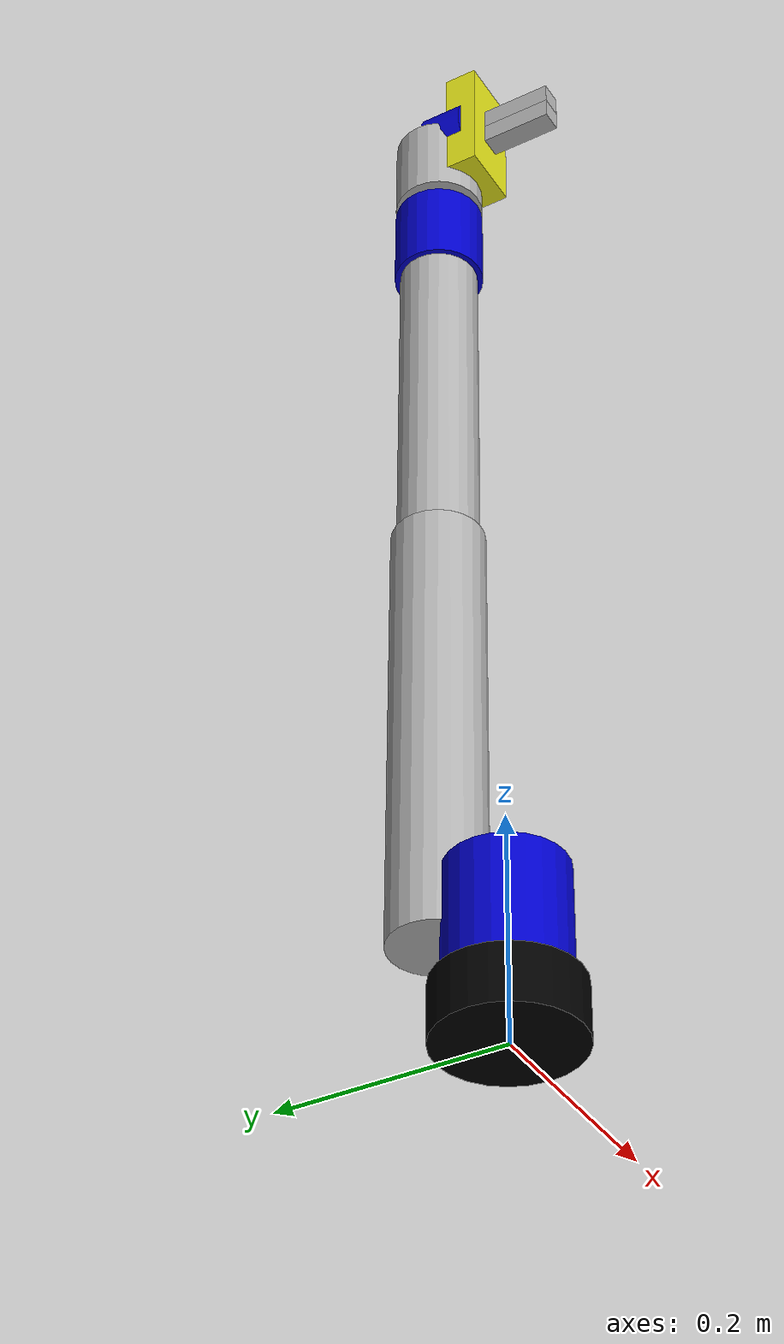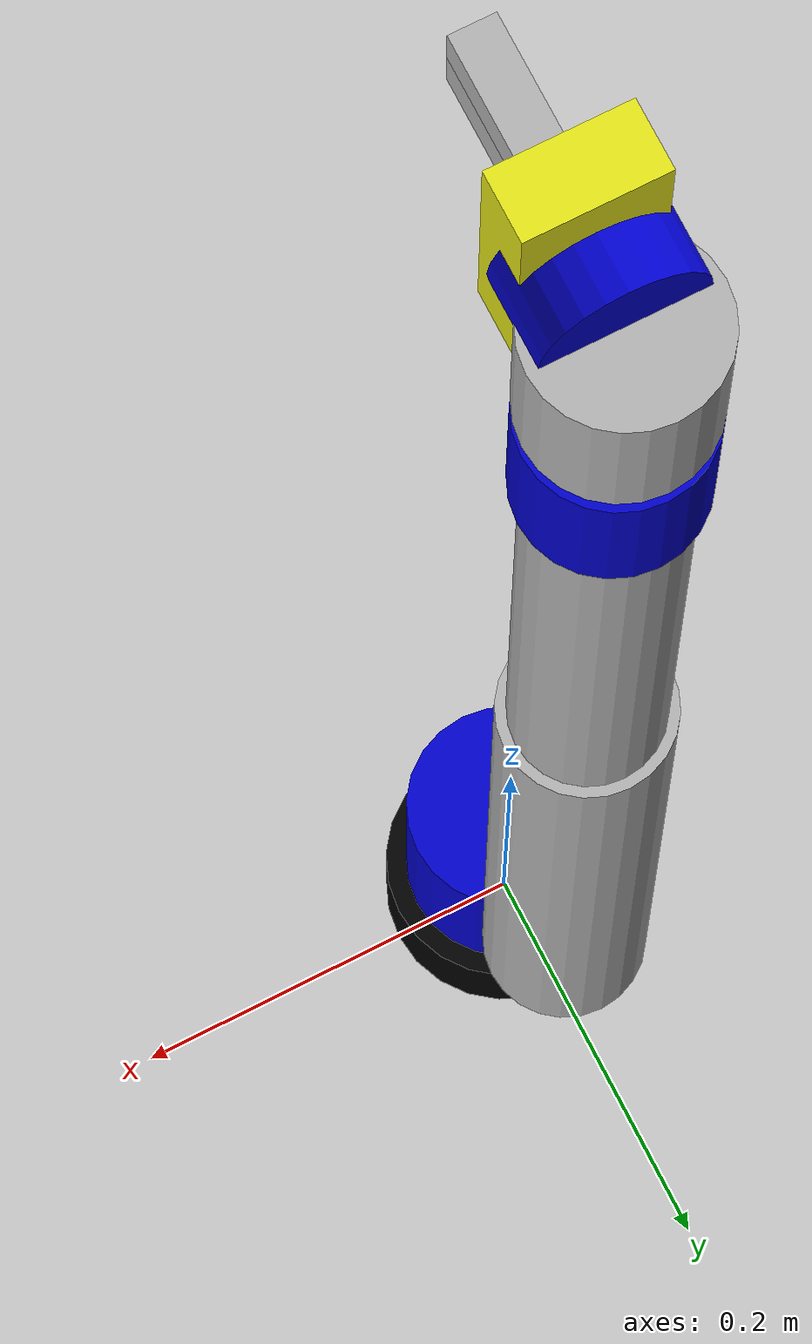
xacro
<?xml version="1.0"?>
<robot xmlns:xacro="http://www.ros.org/wiki/xacro" name="my_arm_with_gripper">
    <xacro:arg name="initial_positions_file" default="initial_positions.yaml" />

    <!-- Import my_arm_with_gripper urdf file -->
    <xacro:include filename="$(find my_arm_description)/urdf/my_arm_with_gripper.urdf" />

    <!-- Import control_xacro -->
    <xacro:include filename="my_arm_with_gripper.ros2_control.xacro" />

    <xacro:my_arm_with_gripper_ros2_control name="FakeSystem" initial_positions_file="$(arg initial_positions_file)"/>

</robot>

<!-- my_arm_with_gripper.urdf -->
<robot name="my_arm_with_gripper">

  <material name="blue">
    <color rgba="0.0 0.0 0.8 1.0"/>
  </material>
  <material name="grey">
    <color rgba="0.7 0.7 0.7 1.0"/>
  </material>
  <material name="black">
    <color rgba="0.0 0.0 0.0 1.0"/>
  </material>
  <material name="white">
    <color rgba="1.0 1.0 1.0 1.0"/>
  </material>
  <material name="gripper_material">
    <color rgba="0.9 0.9 0.1 1.0"/>
  </material>

  <link name="base_link">
    <visual>
      <geometry>
        <cylinder length="0.05" radius="0.06"/>
      </geometry>
      <origin xyz="0 0 0.025" rpy="0 0 0"/>
      <material name="black"/>
    </visual>
    <collision>
      <geometry>
        <cylinder length="0.05" radius="0.06"/>
      </geometry>
      <origin xyz="0 0 0.025" rpy="0 0 0"/>
    </collision>
  </link>

  <joint name="shoulder_pan_joint" type="revolute">
    <parent link="base_link"/>
    <child link="shoulder_link"/>
    <origin xyz="0 0 0.05" rpy="0 0 0"/>
    <axis xyz="0 0 1"/>
    <limit lower="-3.14" upper="3.14" effort="100" velocity="1.0"/>
  </joint>

  <link name="shoulder_link">
    <visual>
      <geometry>
        <cylinder length="0.1" radius="0.05"/>
      </geometry>
      <origin xyz="0 0 0.05" rpy="0 0 0"/>
      <material name="blue"/>
    </visual>
    <collision>
      <geometry>
        <cylinder length="0.1" radius="0.05"/>
      </geometry>
      <origin xyz="0 0 0.05" rpy="0 0 0"/>
    </collision>
  </link>

  <joint name="shoulder_lift_joint" type="revolute">
    <parent link="shoulder_link"/>
    <child link="upper_arm_link"/>
    <origin xyz="0 0.06 0.05" rpy="1.5708 0 0"/>
    <axis xyz="0 0 1"/>
    <limit lower="-3.14" upper="3.14" effort="100" velocity="1.0"/>
  </joint>

  <link name="upper_arm_link">
    <visual>
      <geometry>
        <cylinder length="0.4" radius="0.04"/>
      </geometry>
      <origin xyz="0 0.2 0" rpy="1.5708 0 0"/>
      <material name="grey"/>
    </visual>
    <collision>
      <geometry>
        <cylinder length="0.4" radius="0.04"/>
      </geometry>
      <origin xyz="0 0.2 0" rpy="1.5708 0 0"/>
    </collision>
  </link>

  <joint name="elbow_joint" type="revolute">
    <parent link="upper_arm_link"/>
    <child link="forearm_link"/>
    <origin xyz="0 0.4 0" rpy="0 0 0"/>
    <axis xyz="0 0 1"/>
    <limit lower="-3.14" upper="3.14" effort="100" velocity="1.0"/>
  </joint>

  <link name="forearm_link">
    <visual>
      <geometry>
        <cylinder length="0.35" radius="0.035"/>
      </geometry>
      <origin xyz="0 0.175 0" rpy="1.5708 0 0"/>
      <material name="grey"/>
    </visual>
    <collision>
      <geometry>
        <cylinder length="0.35" radius="0.035"/>
      </geometry>
      <origin xyz="0 0.175 0" rpy="1.5708 0 0"/>
    </collision>
  </link>

  <joint name="wrist_1_joint" type="revolute">
    <parent link="forearm_link"/>
    <child link="wrist_1_link"/>
    <origin xyz="0 0.35 0" rpy="0 0 0"/>
    <axis xyz="0 0 1"/>
    <limit lower="-3.14" upper="3.14" effort="50" velocity="1.0"/>
  </joint>

  <link name="wrist_1_link">
    <visual>
      <geometry>
        <cylinder length="0.08" radius="0.04"/>
      </geometry>
      <origin xyz="0 0 0" rpy="1.5708 0 0"/>
      <material name="blue"/>
    </visual>
    <collision>
      <geometry>
        <cylinder length="0.08" radius="0.04"/>
      </geometry>
      <origin xyz="0 0 0" rpy="1.5708 0 0"/>
    </collision>
  </link>

  <joint name="wrist_2_joint" type="revolute">
    <parent link="wrist_1_link"/>
    <child link="wrist_2_link"/>
    <origin xyz="0 0.05 0" rpy="-1.5708 0 0"/>
    <axis xyz="0 0 1"/>
    <limit lower="-3.14" upper="3.14" effort="50" velocity="1.0"/>
  </joint>

  <link name="wrist_2_link">
    <visual>
      <geometry>
        <cylinder length="0.08" radius="0.04"/>
      </geometry>
      <origin xyz="0 0 0.04" rpy="0 0 0"/>
      <material name="grey"/>
    </visual>
    <collision>
      <geometry>
        <cylinder length="0.08" radius="0.04"/>
      </geometry>
      <origin xyz="0 0 0.04" rpy="0 0 0"/>
    </collision>
  </link>

  <joint name="wrist_3_joint" type="revolute">
    <parent link="wrist_2_link"/>
    <child link="wrist_3_link"/>
    <origin xyz="0 0 0.08" rpy="1.5708 0 0"/>
    <axis xyz="0 0 1"/>
    <limit lower="-3.14" upper="3.14" effort="50" velocity="1.0"/>
  </joint>

  <link name="wrist_3_link">
    <visual>
      <geometry>
        <cylinder length="0.04" radius="0.035"/>
      </geometry>
      <origin xyz="0 0 0.02" rpy="0 0 0"/>
      <material name="blue"/>
    </visual>
    <collision>
      <geometry>
        <cylinder length="0.04" radius="0.035"/>
      </geometry>
      <origin xyz="0 0 0.02" rpy="0 0 0"/>
    </collision>

    <visual>
      <geometry>
        <box size="0.01 0.08 0.01"/> </geometry>
      <origin xyz="0 0 0.045" rpy="0 0 0"/> <material name="white"/>
    </visual>
  </link>

  <joint name="wrist_3_to_gripper_base_joint" type="fixed">
    <parent link="wrist_3_link"/>
    <origin xyz="0 0 0.04" rpy="0 0 0"/>
    <child link="gripper_base_link"/>
  </joint>

  <link name="gripper_base_link">
    <visual>
      <geometry>
        <box size="0.06 0.12 0.03"/>
      </geometry>
      <material name="gripper_material"/>
    </visual>
    <collision>
      <geometry>
        <box size="0.06 0.12 0.03"/>
      </geometry>
    </collision>
  </link>

  <joint name="gripper_base_to_grasp_point" type="fixed">
    <parent link="gripper_base_link"/>
    <child link="grasp_point_link"/>
    <origin xyz="0 0 0.08" rpy="0 0 0"/>
  </joint>

  <link name="grasp_point_link">
    <inertial>
      <origin xyz="0 0 0" rpy="0 0 0"/>
      <mass value="0.001"/>
      <inertia ixx="0.0001" ixy="0" ixz="0" iyy="0.0001" iyz="0" izz="0.0001"/>
    </inertial>
  </link>
  <joint name="left_finger_joint" type="prismatic">
    <parent link="gripper_base_link"/>
    <child link="left_finger_link"/>
    <origin xyz="0 0.01 0" rpy="0 0 0"/>
    <axis xyz="0 1 0"/>
    <limit lower="0.0" upper="0.05" effort="15" velocity="0.7"/>
  </joint>

  <link name="left_finger_link">
    <visual>
      <geometry>
        <box size="0.02 0.02 0.08"/>
      </geometry>
      <origin xyz="0 0 0.04" rpy="0 0 0"/>
      <material name="grey"/>
    </visual>
    <collision>
      <geometry>
        <box size="0.02 0.02 0.08"/>
      </geometry>
      <origin xyz="0 0 0.04" rpy="0 0 0"/>
    </collision>
  </link>

  <joint name="right_finger_joint" type="prismatic">
    <parent link="gripper_base_link"/>
    <child link="right_finger_link"/>
    <origin xyz="0 -0.01 0" rpy="0 0 0"/>
    <axis xyz="0 -1 0"/>
    <limit lower="0.0" upper="0.05" effort="15" velocity="0.7"/>
  </joint>

  <link name="right_finger_link">
    <visual>
      <geometry>
        <box size="0.02 0.02 0.08"/>
      </geometry>
      <origin xyz="0 0 0.04" rpy="0 0 0"/>
      <material name="grey"/>
    </visual>
    <collision>
      <geometry>
        <box size="0.02 0.02 0.08"/>
      </geometry>
      <origin xyz="0 0 0.04" rpy="0 0 0"/>
    </collision>
  </link>

  </robot>
